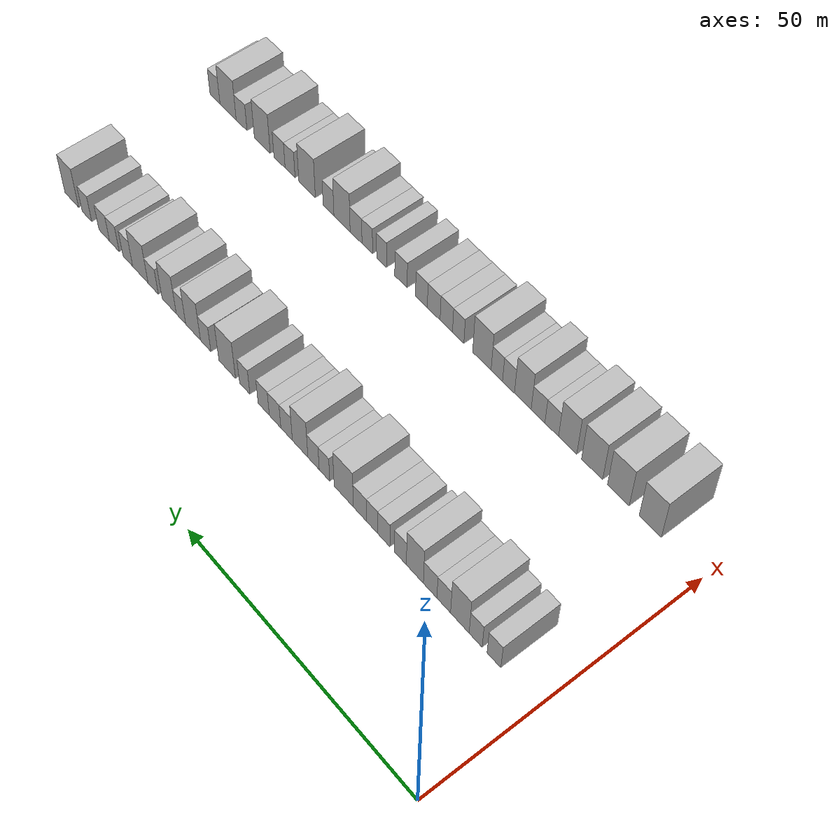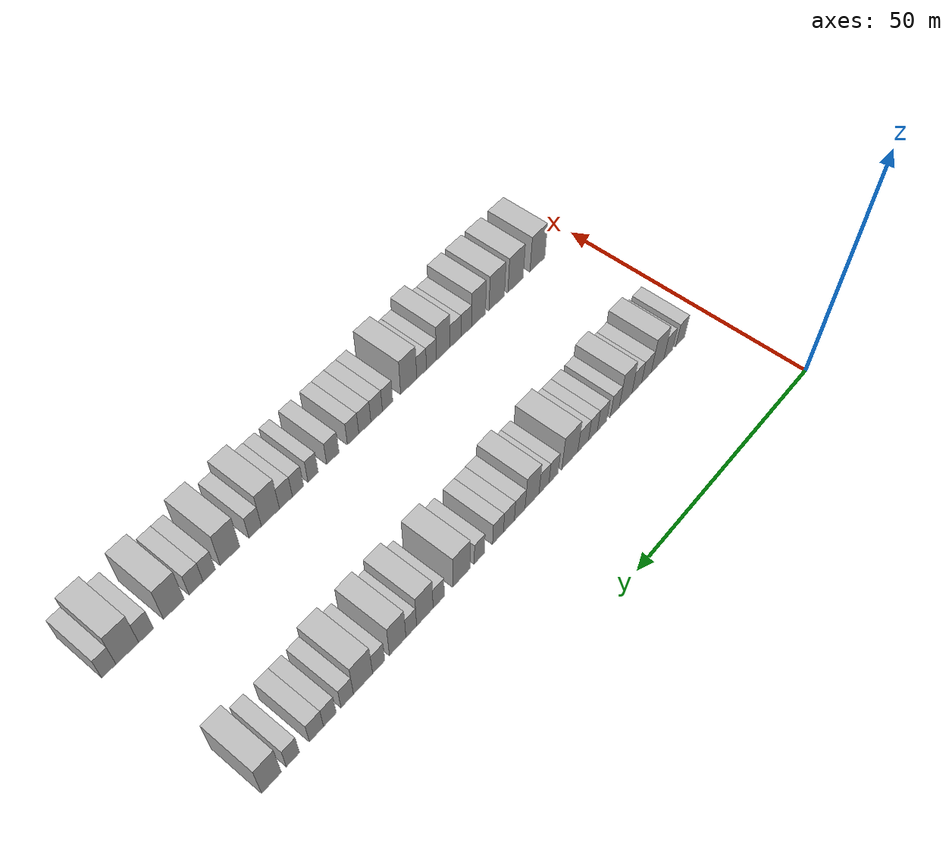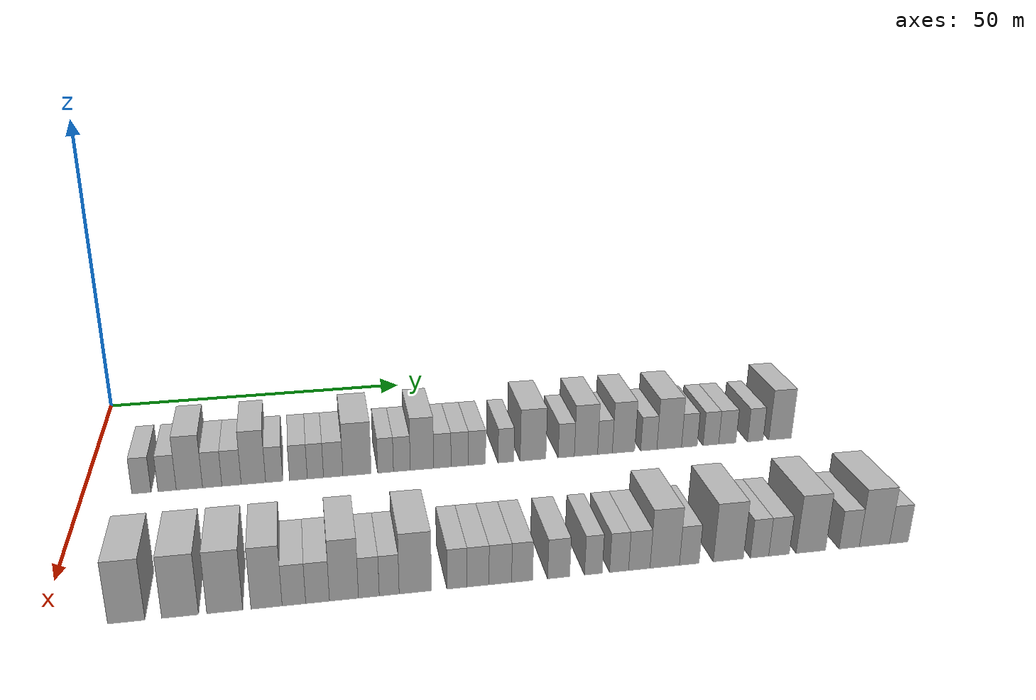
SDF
<sdf version="1.6">
 <world name="default">
  <model name="building_60">
   <static>1</static>
   <pose>25.0000 8.6152 0 0.000000 0.000000 0.000000</pose>
   <link name="link">
    <pose>0 0 3.00 0 0 0</pose>
    <collision name="collision"><geometry><box><size>10.0000 2.7752 6.0000</size></box></geometry></collision>
    <visual name="visual">
     <cast_shadows>0</cast_shadows>
     <geometry><box><size>10.0000 2.7752 6.0000</size></box></geometry>
     <material>
      <script>
       <uri>model://HANNAS_wall/materials/scripts</uri>
       <uri>model://HANNAS_wall/materials/textures</uri>
       <name>vrc/HANNAS_wall</name>
      </script>
     </material>
    </visual>
   </link>
  </model>
  <model name="building_61">
   <static>1</static>
   <pose>25.0000 12.3280 0 0.000000 0.000000 0.000000</pose>
   <link name="link">
    <pose>0 0 3.00 0 0 0</pose>
    <collision name="collision"><geometry><box><size>10.0000 2.6505 6.0000</size></box></geometry></collision>
    <visual name="visual">
     <cast_shadows>0</cast_shadows>
     <geometry><box><size>10.0000 2.6505 6.0000</size></box></geometry>
     <material>
      <script>
       <uri>model://HANNAS_wall/materials/scripts</uri>
       <uri>model://HANNAS_wall/materials/textures</uri>
       <name>vrc/HANNAS_wall</name>
      </script>
     </material>
    </visual>
   </link>
  </model>
  <model name="building_62">
   <static>1</static>
   <pose>25.0000 15.5733 0 0.000000 0.000000 0.000000</pose>
   <link name="link">
    <pose>0 0 4.50 0 0 0</pose>
    <collision name="collision"><geometry><box><size>10.0000 3.8400 9.0000</size></box></geometry></collision>
    <visual name="visual">
     <cast_shadows>0</cast_shadows>
     <geometry><box><size>10.0000 3.8400 9.0000</size></box></geometry>
     <material>
      <script>
       <uri>model://HANNAS_wall/materials/scripts</uri>
       <uri>model://HANNAS_wall/materials/textures</uri>
       <name>vrc/HANNAS_wall</name>
      </script>
     </material>
    </visual>
   </link>
  </model>
  <model name="building_63">
   <static>1</static>
   <pose>25.0000 18.9208 0 0.000000 0.000000 0.000000</pose>
   <link name="link">
    <pose>0 0 3.00 0 0 0</pose>
    <collision name="collision"><geometry><box><size>10.0000 2.8550 6.0000</size></box></geometry></collision>
    <visual name="visual">
     <cast_shadows>0</cast_shadows>
     <geometry><box><size>10.0000 2.8550 6.0000</size></box></geometry>
     <material>
      <script>
       <uri>model://HANNAS_wall/materials/scripts</uri>
       <uri>model://HANNAS_wall/materials/textures</uri>
       <name>vrc/HANNAS_wall</name>
      </script>
     </material>
    </visual>
   </link>
  </model>
  <model name="building_64">
   <static>1</static>
   <pose>25.0000 21.7757 0 0.000000 0.000000 0.000000</pose>
   <link name="link">
    <pose>0 0 3.00 0 0 0</pose>
    <collision name="collision"><geometry><box><size>10.0000 2.8547 6.0000</size></box></geometry></collision>
    <visual name="visual">
     <cast_shadows>0</cast_shadows>
     <geometry><box><size>10.0000 2.8547 6.0000</size></box></geometry>
     <material>
      <script>
       <uri>model://HANNAS_wall/materials/scripts</uri>
       <uri>model://HANNAS_wall/materials/textures</uri>
       <name>vrc/HANNAS_wall</name>
      </script>
     </material>
    </visual>
   </link>
  </model>
  <model name="building_65">
   <static>1</static>
   <pose>25.0000 25.0209 0 0.000000 0.000000 0.000000</pose>
   <link name="link">
    <pose>0 0 4.50 0 0 0</pose>
    <collision name="collision"><geometry><box><size>10.0000 3.6357 9.0000</size></box></geometry></collision>
    <visual name="visual">
     <cast_shadows>0</cast_shadows>
     <geometry><box><size>10.0000 3.6357 9.0000</size></box></geometry>
     <material>
      <script>
       <uri>model://HANNAS_wall/materials/scripts</uri>
       <uri>model://HANNAS_wall/materials/textures</uri>
       <name>vrc/HANNAS_wall</name>
      </script>
     </material>
    </visual>
   </link>
  </model>
  <model name="building_66">
   <static>1</static>
   <pose>25.0000 28.1320 0 0.000000 0.000000 0.000000</pose>
   <link name="link">
    <pose>0 0 3.00 0 0 0</pose>
    <collision name="collision"><geometry><box><size>10.0000 2.5865 6.0000</size></box></geometry></collision>
    <visual name="visual">
     <cast_shadows>0</cast_shadows>
     <geometry><box><size>10.0000 2.5865 6.0000</size></box></geometry>
     <material>
      <script>
       <uri>model://HANNAS_wall/materials/scripts</uri>
       <uri>model://HANNAS_wall/materials/textures</uri>
       <name>vrc/HANNAS_wall</name>
      </script>
     </material>
    </visual>
   </link>
  </model>
  <model name="building_67">
   <static>1</static>
   <pose>25.0000 31.7616 0 0.000000 0.000000 0.000000</pose>
   <link name="link">
    <pose>0 0 3.00 0 0 0</pose>
    <collision name="collision"><geometry><box><size>10.0000 2.6728 6.0000</size></box></geometry></collision>
    <visual name="visual">
     <cast_shadows>0</cast_shadows>
     <geometry><box><size>10.0000 2.6728 6.0000</size></box></geometry>
     <material>
      <script>
       <uri>model://HANNAS_wall/materials/scripts</uri>
       <uri>model://HANNAS_wall/materials/textures</uri>
       <name>vrc/HANNAS_wall</name>
      </script>
     </material>
    </visual>
   </link>
  </model>
  <model name="building_68">
   <static>1</static>
   <pose>25.0000 34.3246 0 0.000000 0.000000 0.000000</pose>
   <link name="link">
    <pose>0 0 3.00 0 0 0</pose>
    <collision name="collision"><geometry><box><size>10.0000 2.4531 6.0000</size></box></geometry></collision>
    <visual name="visual">
     <cast_shadows>0</cast_shadows>
     <geometry><box><size>10.0000 2.4531 6.0000</size></box></geometry>
     <material>
      <script>
       <uri>model://HANNAS_wall/materials/scripts</uri>
       <uri>model://HANNAS_wall/materials/textures</uri>
       <name>vrc/HANNAS_wall</name>
      </script>
     </material>
    </visual>
   </link>
  </model>
  <model name="building_69">
   <static>1</static>
   <pose>25.0000 37.0264 0 0.000000 0.000000 0.000000</pose>
   <link name="link">
    <pose>0 0 3.00 0 0 0</pose>
    <collision name="collision"><geometry><box><size>10.0000 2.9506 6.0000</size></box></geometry></collision>
    <visual name="visual">
     <cast_shadows>0</cast_shadows>
     <geometry><box><size>10.0000 2.9506 6.0000</size></box></geometry>
     <material>
      <script>
       <uri>model://HANNAS_wall/materials/scripts</uri>
       <uri>model://HANNAS_wall/materials/textures</uri>
       <name>vrc/HANNAS_wall</name>
      </script>
     </material>
    </visual>
   </link>
  </model>
  <model name="building_70">
   <static>1</static>
   <pose>25.0000 40.6774 0 0.000000 0.000000 0.000000</pose>
   <link name="link">
    <pose>0 0 4.50 0 0 0</pose>
    <collision name="collision"><geometry><box><size>10.0000 4.3513 9.0000</size></box></geometry></collision>
    <visual name="visual">
     <cast_shadows>0</cast_shadows>
     <geometry><box><size>10.0000 4.3513 9.0000</size></box></geometry>
     <material>
      <script>
       <uri>model://HANNAS_wall/materials/scripts</uri>
       <uri>model://HANNAS_wall/materials/textures</uri>
       <name>vrc/HANNAS_wall</name>
      </script>
     </material>
    </visual>
   </link>
  </model>
  <model name="building_71">
   <static>1</static>
   <pose>25.0000 45.0658 0 0.000000 0.000000 0.000000</pose>
   <link name="link">
    <pose>0 0 3.00 0 0 0</pose>
    <collision name="collision"><geometry><box><size>10.0000 2.4256 6.0000</size></box></geometry></collision>
    <visual name="visual">
     <cast_shadows>0</cast_shadows>
     <geometry><box><size>10.0000 2.4256 6.0000</size></box></geometry>
     <material>
      <script>
       <uri>model://HANNAS_wall/materials/scripts</uri>
       <uri>model://HANNAS_wall/materials/textures</uri>
       <name>vrc/HANNAS_wall</name>
      </script>
     </material>
    </visual>
   </link>
  </model>
  <model name="building_72">
   <static>1</static>
   <pose>25.0000 47.5848 0 0.000000 0.000000 0.000000</pose>
   <link name="link">
    <pose>0 0 3.00 0 0 0</pose>
    <collision name="collision"><geometry><box><size>10.0000 2.6124 6.0000</size></box></geometry></collision>
    <visual name="visual">
     <cast_shadows>0</cast_shadows>
     <geometry><box><size>10.0000 2.6124 6.0000</size></box></geometry>
     <material>
      <script>
       <uri>model://HANNAS_wall/materials/scripts</uri>
       <uri>model://HANNAS_wall/materials/textures</uri>
       <name>vrc/HANNAS_wall</name>
      </script>
     </material>
    </visual>
   </link>
  </model>
  <model name="building_73">
   <static>1</static>
   <pose>25.0000 50.7102 0 0.000000 0.000000 0.000000</pose>
   <link name="link">
    <pose>0 0 4.50 0 0 0</pose>
    <collision name="collision"><geometry><box><size>10.0000 3.6385 9.0000</size></box></geometry></collision>
    <visual name="visual">
     <cast_shadows>0</cast_shadows>
     <geometry><box><size>10.0000 3.6385 9.0000</size></box></geometry>
     <material>
      <script>
       <uri>model://HANNAS_wall/materials/scripts</uri>
       <uri>model://HANNAS_wall/materials/textures</uri>
       <name>vrc/HANNAS_wall</name>
      </script>
     </material>
    </visual>
   </link>
  </model>
  <model name="building_74">
   <static>1</static>
   <pose>25.0000 53.8976 0 0.000000 0.000000 0.000000</pose>
   <link name="link">
    <pose>0 0 3.00 0 0 0</pose>
    <collision name="collision"><geometry><box><size>10.0000 2.7363 6.0000</size></box></geometry></collision>
    <visual name="visual">
     <cast_shadows>0</cast_shadows>
     <geometry><box><size>10.0000 2.7363 6.0000</size></box></geometry>
     <material>
      <script>
       <uri>model://HANNAS_wall/materials/scripts</uri>
       <uri>model://HANNAS_wall/materials/textures</uri>
       <name>vrc/HANNAS_wall</name>
      </script>
     </material>
    </visual>
   </link>
  </model>
  <model name="building_75">
   <static>1</static>
   <pose>25.0000 56.6421 0 0.000000 0.000000 0.000000</pose>
   <link name="link">
    <pose>0 0 3.00 0 0 0</pose>
    <collision name="collision"><geometry><box><size>10.0000 2.7527 6.0000</size></box></geometry></collision>
    <visual name="visual">
     <cast_shadows>0</cast_shadows>
     <geometry><box><size>10.0000 2.7527 6.0000</size></box></geometry>
     <material>
      <script>
       <uri>model://HANNAS_wall/materials/scripts</uri>
       <uri>model://HANNAS_wall/materials/textures</uri>
       <name>vrc/HANNAS_wall</name>
      </script>
     </material>
    </visual>
   </link>
  </model>
  <model name="building_76">
   <static>1</static>
   <pose>25.0000 59.3777 0 0.000000 0.000000 0.000000</pose>
   <link name="link">
    <pose>0 0 3.00 0 0 0</pose>
    <collision name="collision"><geometry><box><size>10.0000 2.7184 6.0000</size></box></geometry></collision>
    <visual name="visual">
     <cast_shadows>0</cast_shadows>
     <geometry><box><size>10.0000 2.7184 6.0000</size></box></geometry>
     <material>
      <script>
       <uri>model://HANNAS_wall/materials/scripts</uri>
       <uri>model://HANNAS_wall/materials/textures</uri>
       <name>vrc/HANNAS_wall</name>
      </script>
     </material>
    </visual>
   </link>
  </model>
  <model name="building_77">
   <static>1</static>
   <pose>25.0000 64.0012 0 0.000000 0.000000 0.000000</pose>
   <link name="link">
    <pose>0 0 3.00 0 0 0</pose>
    <collision name="collision"><geometry><box><size>10.0000 2.5286 6.0000</size></box></geometry></collision>
    <visual name="visual">
     <cast_shadows>0</cast_shadows>
     <geometry><box><size>10.0000 2.5286 6.0000</size></box></geometry>
     <material>
      <script>
       <uri>model://HANNAS_wall/materials/scripts</uri>
       <uri>model://HANNAS_wall/materials/textures</uri>
       <name>vrc/HANNAS_wall</name>
      </script>
     </material>
    </visual>
   </link>
  </model>
  <model name="building_78">
   <static>1</static>
   <pose>25.0000 68.3409 0 0.000000 0.000000 0.000000</pose>
   <link name="link">
    <pose>0 0 4.50 0 0 0</pose>
    <collision name="collision"><geometry><box><size>10.0000 4.1508 9.0000</size></box></geometry></collision>
    <visual name="visual">
     <cast_shadows>0</cast_shadows>
     <geometry><box><size>10.0000 4.1508 9.0000</size></box></geometry>
     <material>
      <script>
       <uri>model://HANNAS_wall/materials/scripts</uri>
       <uri>model://HANNAS_wall/materials/textures</uri>
       <name>vrc/HANNAS_wall</name>
      </script>
     </material>
    </visual>
   </link>
  </model>
  <model name="building_79">
   <static>1</static>
   <pose>25.0000 73.7358 0 0.000000 0.000000 0.000000</pose>
   <link name="link">
    <pose>0 0 3.00 0 0 0</pose>
    <collision name="collision"><geometry><box><size>10.0000 2.6390 6.0000</size></box></geometry></collision>
    <visual name="visual">
     <cast_shadows>0</cast_shadows>
     <geometry><box><size>10.0000 2.6390 6.0000</size></box></geometry>
     <material>
      <script>
       <uri>model://HANNAS_wall/materials/scripts</uri>
       <uri>model://HANNAS_wall/materials/textures</uri>
       <name>vrc/HANNAS_wall</name>
      </script>
     </material>
    </visual>
   </link>
  </model>
  <model name="building_80">
   <static>1</static>
   <pose>25.0000 76.9606 0 0.000000 0.000000 0.000000</pose>
   <link name="link">
    <pose>0 0 4.50 0 0 0</pose>
    <collision name="collision"><geometry><box><size>10.0000 3.8106 9.0000</size></box></geometry></collision>
    <visual name="visual">
     <cast_shadows>0</cast_shadows>
     <geometry><box><size>10.0000 3.8106 9.0000</size></box></geometry>
     <material>
      <script>
       <uri>model://HANNAS_wall/materials/scripts</uri>
       <uri>model://HANNAS_wall/materials/textures</uri>
       <name>vrc/HANNAS_wall</name>
      </script>
     </material>
    </visual>
   </link>
  </model>
  <model name="building_81">
   <static>1</static>
   <pose>25.0000 80.0798 0 0.000000 0.000000 0.000000</pose>
   <link name="link">
    <pose>0 0 3.00 0 0 0</pose>
    <collision name="collision"><geometry><box><size>10.0000 2.4279 6.0000</size></box></geometry></collision>
    <visual name="visual">
     <cast_shadows>0</cast_shadows>
     <geometry><box><size>10.0000 2.4279 6.0000</size></box></geometry>
     <material>
      <script>
       <uri>model://HANNAS_wall/materials/scripts</uri>
       <uri>model://HANNAS_wall/materials/textures</uri>
       <name>vrc/HANNAS_wall</name>
      </script>
     </material>
    </visual>
   </link>
  </model>
  <model name="building_82">
   <static>1</static>
   <pose>25.0000 83.1506 0 0.000000 0.000000 0.000000</pose>
   <link name="link">
    <pose>0 0 4.50 0 0 0</pose>
    <collision name="collision"><geometry><box><size>10.0000 3.7137 9.0000</size></box></geometry></collision>
    <visual name="visual">
     <cast_shadows>0</cast_shadows>
     <geometry><box><size>10.0000 3.7137 9.0000</size></box></geometry>
     <material>
      <script>
       <uri>model://HANNAS_wall/materials/scripts</uri>
       <uri>model://HANNAS_wall/materials/textures</uri>
       <name>vrc/HANNAS_wall</name>
      </script>
     </material>
    </visual>
   </link>
  </model>
  <model name="building_83">
   <static>1</static>
   <pose>25.0000 87.3602 0 0.000000 0.000000 0.000000</pose>
   <link name="link">
    <pose>0 0 3.00 0 0 0</pose>
    <collision name="collision"><geometry><box><size>10.0000 2.7054 6.0000</size></box></geometry></collision>
    <visual name="visual">
     <cast_shadows>0</cast_shadows>
     <geometry><box><size>10.0000 2.7054 6.0000</size></box></geometry>
     <material>
      <script>
       <uri>model://HANNAS_wall/materials/scripts</uri>
       <uri>model://HANNAS_wall/materials/textures</uri>
       <name>vrc/HANNAS_wall</name>
      </script>
     </material>
    </visual>
   </link>
  </model>
  <model name="building_84">
   <static>1</static>
   <pose>25.0000 90.7812 0 0.000000 0.000000 0.000000</pose>
   <link name="link">
    <pose>0 0 4.50 0 0 0</pose>
    <collision name="collision"><geometry><box><size>10.0000 4.1368 9.0000</size></box></geometry></collision>
    <visual name="visual">
     <cast_shadows>0</cast_shadows>
     <geometry><box><size>10.0000 4.1368 9.0000</size></box></geometry>
     <material>
      <script>
       <uri>model://HANNAS_wall/materials/scripts</uri>
       <uri>model://HANNAS_wall/materials/textures</uri>
       <name>vrc/HANNAS_wall</name>
      </script>
     </material>
    </visual>
   </link>
  </model>
  <model name="building_85">
   <static>1</static>
   <pose>25.0000 94.1807 0 0.000000 0.000000 0.000000</pose>
   <link name="link">
    <pose>0 0 3.00 0 0 0</pose>
    <collision name="collision"><geometry><box><size>10.0000 2.6621 6.0000</size></box></geometry></collision>
    <visual name="visual">
     <cast_shadows>0</cast_shadows>
     <geometry><box><size>10.0000 2.6621 6.0000</size></box></geometry>
     <material>
      <script>
       <uri>model://HANNAS_wall/materials/scripts</uri>
       <uri>model://HANNAS_wall/materials/textures</uri>
       <name>vrc/HANNAS_wall</name>
      </script>
     </material>
    </visual>
   </link>
  </model>
  <model name="building_86">
   <static>1</static>
   <pose>25.0000 97.8368 0 0.000000 0.000000 0.000000</pose>
   <link name="link">
    <pose>0 0 3.00 0 0 0</pose>
    <collision name="collision"><geometry><box><size>10.0000 2.6501 6.0000</size></box></geometry></collision>
    <visual name="visual">
     <cast_shadows>0</cast_shadows>
     <geometry><box><size>10.0000 2.6501 6.0000</size></box></geometry>
     <material>
      <script>
       <uri>model://HANNAS_wall/materials/scripts</uri>
       <uri>model://HANNAS_wall/materials/textures</uri>
       <name>vrc/HANNAS_wall</name>
      </script>
     </material>
    </visual>
   </link>
  </model>
  <model name="building_87">
   <static>1</static>
   <pose>25.0000 100.6346 0 0.000000 0.000000 0.000000</pose>
   <link name="link">
    <pose>0 0 3.00 0 0 0</pose>
    <collision name="collision"><geometry><box><size>10.0000 2.9455 6.0000</size></box></geometry></collision>
    <visual name="visual">
     <cast_shadows>0</cast_shadows>
     <geometry><box><size>10.0000 2.9455 6.0000</size></box></geometry>
     <material>
      <script>
       <uri>model://HANNAS_wall/materials/scripts</uri>
       <uri>model://HANNAS_wall/materials/textures</uri>
       <name>vrc/HANNAS_wall</name>
      </script>
     </material>
    </visual>
   </link>
  </model>
  <model name="building_88">
   <static>1</static>
   <pose>25.0000 105.4472 0 0.000000 0.000000 0.000000</pose>
   <link name="link">
    <pose>0 0 3.00 0 0 0</pose>
    <collision name="collision"><geometry><box><size>10.0000 2.6798 6.0000</size></box></geometry></collision>
    <visual name="visual">
     <cast_shadows>0</cast_shadows>
     <geometry><box><size>10.0000 2.6798 6.0000</size></box></geometry>
     <material>
      <script>
       <uri>model://HANNAS_wall/materials/scripts</uri>
       <uri>model://HANNAS_wall/materials/textures</uri>
       <name>vrc/HANNAS_wall</name>
      </script>
     </material>
    </visual>
   </link>
  </model>
  <model name="building_89">
   <static>1</static>
   <pose>25.0000 109.7364 0 0.000000 0.000000 0.000000</pose>
   <link name="link">
    <pose>0 0 4.50 0 0 0</pose>
    <collision name="collision"><geometry><box><size>10.0000 3.8987 9.0000</size></box></geometry></collision>
    <visual name="visual">
     <cast_shadows>0</cast_shadows>
     <geometry><box><size>10.0000 3.8987 9.0000</size></box></geometry>
     <material>
      <script>
       <uri>model://HANNAS_wall/materials/scripts</uri>
       <uri>model://HANNAS_wall/materials/textures</uri>
       <name>vrc/HANNAS_wall</name>
      </script>
     </material>
    </visual>
   </link>
  </model>
  <model name="building_173">
   <static>1</static>
   <pose>55.0000 10.3461 0 0.000000 0.000000 0.000000</pose>
   <link name="link">
    <pose>0 0 4.50 0 0 0</pose>
    <collision name="collision"><geometry><box><size>10.0000 4.4324 9.0000</size></box></geometry></collision>
    <visual name="visual">
     <cast_shadows>0</cast_shadows>
     <geometry><box><size>10.0000 4.4324 9.0000</size></box></geometry>
     <material>
      <script>
       <uri>model://HANNAS_wall/materials/scripts</uri>
       <uri>model://HANNAS_wall/materials/textures</uri>
       <name>vrc/HANNAS_wall</name>
      </script>
     </material>
    </visual>
   </link>
  </model>
  <model name="building_174">
   <static>1</static>
   <pose>55.0000 16.7823 0 0.000000 0.000000 0.000000</pose>
   <link name="link">
    <pose>0 0 4.50 0 0 0</pose>
    <collision name="collision"><geometry><box><size>10.0000 4.4399 9.0000</size></box></geometry></collision>
    <visual name="visual">
     <cast_shadows>0</cast_shadows>
     <geometry><box><size>10.0000 4.4399 9.0000</size></box></geometry>
     <material>
      <script>
       <uri>model://HANNAS_wall/materials/scripts</uri>
       <uri>model://HANNAS_wall/materials/textures</uri>
       <name>vrc/HANNAS_wall</name>
      </script>
     </material>
    </visual>
   </link>
  </model>
  <model name="building_175">
   <static>1</static>
   <pose>55.0000 22.1979 0 0.000000 0.000000 0.000000</pose>
   <link name="link">
    <pose>0 0 4.50 0 0 0</pose>
    <collision name="collision"><geometry><box><size>10.0000 4.3912 9.0000</size></box></geometry></collision>
    <visual name="visual">
     <cast_shadows>0</cast_shadows>
     <geometry><box><size>10.0000 4.3912 9.0000</size></box></geometry>
     <material>
      <script>
       <uri>model://HANNAS_wall/materials/scripts</uri>
       <uri>model://HANNAS_wall/materials/textures</uri>
       <name>vrc/HANNAS_wall</name>
      </script>
     </material>
    </visual>
   </link>
  </model>
  <model name="building_176">
   <static>1</static>
   <pose>55.0000 27.3187 0 0.000000 0.000000 0.000000</pose>
   <link name="link">
    <pose>0 0 4.50 0 0 0</pose>
    <collision name="collision"><geometry><box><size>10.0000 3.8504 9.0000</size></box></geometry></collision>
    <visual name="visual">
     <cast_shadows>0</cast_shadows>
     <geometry><box><size>10.0000 3.8504 9.0000</size></box></geometry>
     <material>
      <script>
       <uri>model://HANNAS_wall/materials/scripts</uri>
       <uri>model://HANNAS_wall/materials/textures</uri>
       <name>vrc/HANNAS_wall</name>
      </script>
     </material>
    </visual>
   </link>
  </model>
  <model name="building_177">
   <static>1</static>
   <pose>55.0000 30.7087 0 0.000000 0.000000 0.000000</pose>
   <link name="link">
    <pose>0 0 3.00 0 0 0</pose>
    <collision name="collision"><geometry><box><size>10.0000 2.9296 6.0000</size></box></geometry></collision>
    <visual name="visual">
     <cast_shadows>0</cast_shadows>
     <geometry><box><size>10.0000 2.9296 6.0000</size></box></geometry>
     <material>
      <script>
       <uri>model://HANNAS_wall/materials/scripts</uri>
       <uri>model://HANNAS_wall/materials/textures</uri>
       <name>vrc/HANNAS_wall</name>
      </script>
     </material>
    </visual>
   </link>
  </model>
  <model name="building_178">
   <static>1</static>
   <pose>55.0000 33.6608 0 0.000000 0.000000 0.000000</pose>
   <link name="link">
    <pose>0 0 3.00 0 0 0</pose>
    <collision name="collision"><geometry><box><size>10.0000 2.9746 6.0000</size></box></geometry></collision>
    <visual name="visual">
     <cast_shadows>0</cast_shadows>
     <geometry><box><size>10.0000 2.9746 6.0000</size></box></geometry>
     <material>
      <script>
       <uri>model://HANNAS_wall/materials/scripts</uri>
       <uri>model://HANNAS_wall/materials/textures</uri>
       <name>vrc/HANNAS_wall</name>
      </script>
     </material>
    </visual>
   </link>
  </model>
  <model name="building_179">
   <static>1</static>
   <pose>55.0000 36.9774 0 0.000000 0.000000 0.000000</pose>
   <link name="link">
    <pose>0 0 4.50 0 0 0</pose>
    <collision name="collision"><geometry><box><size>10.0000 3.6586 9.0000</size></box></geometry></collision>
    <visual name="visual">
     <cast_shadows>0</cast_shadows>
     <geometry><box><size>10.0000 3.6586 9.0000</size></box></geometry>
     <material>
      <script>
       <uri>model://HANNAS_wall/materials/scripts</uri>
       <uri>model://HANNAS_wall/materials/textures</uri>
       <name>vrc/HANNAS_wall</name>
      </script>
     </material>
    </visual>
   </link>
  </model>
  <model name="building_180">
   <static>1</static>
   <pose>55.0000 40.1255 0 0.000000 0.000000 0.000000</pose>
   <link name="link">
    <pose>0 0 3.00 0 0 0</pose>
    <collision name="collision"><geometry><box><size>10.0000 2.6378 6.0000</size></box></geometry></collision>
    <visual name="visual">
     <cast_shadows>0</cast_shadows>
     <geometry><box><size>10.0000 2.6378 6.0000</size></box></geometry>
     <material>
      <script>
       <uri>model://HANNAS_wall/materials/scripts</uri>
       <uri>model://HANNAS_wall/materials/textures</uri>
       <name>vrc/HANNAS_wall</name>
      </script>
     </material>
    </visual>
   </link>
  </model>
  <model name="building_181">
   <static>1</static>
   <pose>55.0000 42.7164 0 0.000000 0.000000 0.000000</pose>
   <link name="link">
    <pose>0 0 3.00 0 0 0</pose>
    <collision name="collision"><geometry><box><size>10.0000 2.5439 6.0000</size></box></geometry></collision>
    <visual name="visual">
     <cast_shadows>0</cast_shadows>
     <geometry><box><size>10.0000 2.5439 6.0000</size></box></geometry>
     <material>
      <script>
       <uri>model://HANNAS_wall/materials/scripts</uri>
       <uri>model://HANNAS_wall/materials/textures</uri>
       <name>vrc/HANNAS_wall</name>
      </script>
     </material>
    </visual>
   </link>
  </model>
  <model name="building_182">
   <static>1</static>
   <pose>55.0000 46.0701 0 0.000000 0.000000 0.000000</pose>
   <link name="link">
    <pose>0 0 4.50 0 0 0</pose>
    <collision name="collision"><geometry><box><size>10.0000 4.1636 9.0000</size></box></geometry></collision>
    <visual name="visual">
     <cast_shadows>0</cast_shadows>
     <geometry><box><size>10.0000 4.1636 9.0000</size></box></geometry>
     <material>
      <script>
       <uri>model://HANNAS_wall/materials/scripts</uri>
       <uri>model://HANNAS_wall/materials/textures</uri>
       <name>vrc/HANNAS_wall</name>
      </script>
     </material>
    </visual>
   </link>
  </model>
  <model name="building_183">
   <static>1</static>
   <pose>55.0000 51.4609 0 0.000000 0.000000 0.000000</pose>
   <link name="link">
    <pose>0 0 3.00 0 0 0</pose>
    <collision name="collision"><geometry><box><size>10.0000 2.6180 6.0000</size></box></geometry></collision>
    <visual name="visual">
     <cast_shadows>0</cast_shadows>
     <geometry><box><size>10.0000 2.6180 6.0000</size></box></geometry>
     <material>
      <script>
       <uri>model://HANNAS_wall/materials/scripts</uri>
       <uri>model://HANNAS_wall/materials/textures</uri>
       <name>vrc/HANNAS_wall</name>
      </script>
     </material>
    </visual>
   </link>
  </model>
  <model name="building_184">
   <static>1</static>
   <pose>55.0000 54.2060 0 0.000000 0.000000 0.000000</pose>
   <link name="link">
    <pose>0 0 3.00 0 0 0</pose>
    <collision name="collision"><geometry><box><size>10.0000 2.8722 6.0000</size></box></geometry></collision>
    <visual name="visual">
     <cast_shadows>0</cast_shadows>
     <geometry><box><size>10.0000 2.8722 6.0000</size></box></geometry>
     <material>
      <script>
       <uri>model://HANNAS_wall/materials/scripts</uri>
       <uri>model://HANNAS_wall/materials/textures</uri>
       <name>vrc/HANNAS_wall</name>
      </script>
     </material>
    </visual>
   </link>
  </model>
  <model name="building_185">
   <static>1</static>
   <pose>55.0000 57.1376 0 0.000000 0.000000 0.000000</pose>
   <link name="link">
    <pose>0 0 3.00 0 0 0</pose>
    <collision name="collision"><geometry><box><size>10.0000 2.9911 6.0000</size></box></geometry></collision>
    <visual name="visual">
     <cast_shadows>0</cast_shadows>
     <geometry><box><size>10.0000 2.9911 6.0000</size></box></geometry>
     <material>
      <script>
       <uri>model://HANNAS_wall/materials/scripts</uri>
       <uri>model://HANNAS_wall/materials/textures</uri>
       <name>vrc/HANNAS_wall</name>
      </script>
     </material>
    </visual>
   </link>
  </model>
  <model name="building_186">
   <static>1</static>
   <pose>55.0000 60.0305 0 0.000000 0.000000 0.000000</pose>
   <link name="link">
    <pose>0 0 3.00 0 0 0</pose>
    <collision name="collision"><geometry><box><size>10.0000 2.7946 6.0000</size></box></geometry></collision>
    <visual name="visual">
     <cast_shadows>0</cast_shadows>
     <geometry><box><size>10.0000 2.7946 6.0000</size></box></geometry>
     <material>
      <script>
       <uri>model://HANNAS_wall/materials/scripts</uri>
       <uri>model://HANNAS_wall/materials/textures</uri>
       <name>vrc/HANNAS_wall</name>
      </script>
     </material>
    </visual>
   </link>
  </model>
  <model name="building_187">
   <static>1</static>
   <pose>55.0000 64.9131 0 0.000000 0.000000 0.000000</pose>
   <link name="link">
    <pose>0 0 3.00 0 0 0</pose>
    <collision name="collision"><geometry><box><size>10.0000 2.9706 6.0000</size></box></geometry></collision>
    <visual name="visual">
     <cast_shadows>0</cast_shadows>
     <geometry><box><size>10.0000 2.9706 6.0000</size></box></geometry>
     <material>
      <script>
       <uri>model://HANNAS_wall/materials/scripts</uri>
       <uri>model://HANNAS_wall/materials/textures</uri>
       <name>vrc/HANNAS_wall</name>
      </script>
     </material>
    </visual>
   </link>
  </model>
  <model name="building_188">
   <static>1</static>
   <pose>55.0000 69.6005 0 0.000000 0.000000 0.000000</pose>
   <link name="link">
    <pose>0 0 3.00 0 0 0</pose>
    <collision name="collision"><geometry><box><size>10.0000 2.4041 6.0000</size></box></geometry></collision>
    <visual name="visual">
     <cast_shadows>0</cast_shadows>
     <geometry><box><size>10.0000 2.4041 6.0000</size></box></geometry>
     <material>
      <script>
       <uri>model://HANNAS_wall/materials/scripts</uri>
       <uri>model://HANNAS_wall/materials/textures</uri>
       <name>vrc/HANNAS_wall</name>
      </script>
     </material>
    </visual>
   </link>
  </model>
  <model name="building_189">
   <static>1</static>
   <pose>55.0000 73.1031 0 0.000000 0.000000 0.000000</pose>
   <link name="link">
    <pose>0 0 3.00 0 0 0</pose>
    <collision name="collision"><geometry><box><size>10.0000 2.6012 6.0000</size></box></geometry></collision>
    <visual name="visual">
     <cast_shadows>0</cast_shadows>
     <geometry><box><size>10.0000 2.6012 6.0000</size></box></geometry>
     <material>
      <script>
       <uri>model://HANNAS_wall/materials/scripts</uri>
       <uri>model://HANNAS_wall/materials/textures</uri>
       <name>vrc/HANNAS_wall</name>
      </script>
     </material>
    </visual>
   </link>
  </model>
  <model name="building_190">
   <static>1</static>
   <pose>55.0000 75.8815 0 0.000000 0.000000 0.000000</pose>
   <link name="link">
    <pose>0 0 3.00 0 0 0</pose>
    <collision name="collision"><geometry><box><size>10.0000 2.9556 6.0000</size></box></geometry></collision>
    <visual name="visual">
     <cast_shadows>0</cast_shadows>
     <geometry><box><size>10.0000 2.9556 6.0000</size></box></geometry>
     <material>
      <script>
       <uri>model://HANNAS_wall/materials/scripts</uri>
       <uri>model://HANNAS_wall/materials/textures</uri>
       <name>vrc/HANNAS_wall</name>
      </script>
     </material>
    </visual>
   </link>
  </model>
  <model name="building_191">
   <static>1</static>
   <pose>55.0000 79.3960 0 0.000000 0.000000 0.000000</pose>
   <link name="link">
    <pose>0 0 4.50 0 0 0</pose>
    <collision name="collision"><geometry><box><size>10.0000 4.0735 9.0000</size></box></geometry></collision>
    <visual name="visual">
     <cast_shadows>0</cast_shadows>
     <geometry><box><size>10.0000 4.0735 9.0000</size></box></geometry>
     <material>
      <script>
       <uri>model://HANNAS_wall/materials/scripts</uri>
       <uri>model://HANNAS_wall/materials/textures</uri>
       <name>vrc/HANNAS_wall</name>
      </script>
     </material>
    </visual>
   </link>
  </model>
  <model name="building_192">
   <static>1</static>
   <pose>55.0000 82.8061 0 0.000000 0.000000 0.000000</pose>
   <link name="link">
    <pose>0 0 3.00 0 0 0</pose>
    <collision name="collision"><geometry><box><size>10.0000 2.7467 6.0000</size></box></geometry></collision>
    <visual name="visual">
     <cast_shadows>0</cast_shadows>
     <geometry><box><size>10.0000 2.7467 6.0000</size></box></geometry>
     <material>
      <script>
       <uri>model://HANNAS_wall/materials/scripts</uri>
       <uri>model://HANNAS_wall/materials/textures</uri>
       <name>vrc/HANNAS_wall</name>
      </script>
     </material>
    </visual>
   </link>
  </model>
  <model name="building_193">
   <static>1</static>
   <pose>55.0000 88.3074 0 0.000000 0.000000 0.000000</pose>
   <link name="link">
    <pose>0 0 4.50 0 0 0</pose>
    <collision name="collision"><geometry><box><size>10.0000 4.2560 9.0000</size></box></geometry></collision>
    <visual name="visual">
     <cast_shadows>0</cast_shadows>
     <geometry><box><size>10.0000 4.2560 9.0000</size></box></geometry>
     <material>
      <script>
       <uri>model://HANNAS_wall/materials/scripts</uri>
       <uri>model://HANNAS_wall/materials/textures</uri>
       <name>vrc/HANNAS_wall</name>
      </script>
     </material>
    </visual>
   </link>
  </model>
  <model name="building_194">
   <static>1</static>
   <pose>55.0000 92.7417 0 0.000000 0.000000 0.000000</pose>
   <link name="link">
    <pose>0 0 3.00 0 0 0</pose>
    <collision name="collision"><geometry><box><size>10.0000 2.6125 6.0000</size></box></geometry></collision>
    <visual name="visual">
     <cast_shadows>0</cast_shadows>
     <geometry><box><size>10.0000 2.6125 6.0000</size></box></geometry>
     <material>
      <script>
       <uri>model://HANNAS_wall/materials/scripts</uri>
       <uri>model://HANNAS_wall/materials/textures</uri>
       <name>vrc/HANNAS_wall</name>
      </script>
     </material>
    </visual>
   </link>
  </model>
  <model name="building_195">
   <static>1</static>
   <pose>55.0000 95.5198 0 0.000000 0.000000 0.000000</pose>
   <link name="link">
    <pose>0 0 3.00 0 0 0</pose>
    <collision name="collision"><geometry><box><size>10.0000 2.9437 6.0000</size></box></geometry></collision>
    <visual name="visual">
     <cast_shadows>0</cast_shadows>
     <geometry><box><size>10.0000 2.9437 6.0000</size></box></geometry>
     <material>
      <script>
       <uri>model://HANNAS_wall/materials/scripts</uri>
       <uri>model://HANNAS_wall/materials/textures</uri>
       <name>vrc/HANNAS_wall</name>
      </script>
     </material>
    </visual>
   </link>
  </model>
  <model name="building_196">
   <static>1</static>
   <pose>55.0000 100.1172 0 0.000000 0.000000 0.000000</pose>
   <link name="link">
    <pose>0 0 4.50 0 0 0</pose>
    <collision name="collision"><geometry><box><size>10.0000 4.2510 9.0000</size></box></geometry></collision>
    <visual name="visual">
     <cast_shadows>0</cast_shadows>
     <geometry><box><size>10.0000 4.2510 9.0000</size></box></geometry>
     <material>
      <script>
       <uri>model://HANNAS_wall/materials/scripts</uri>
       <uri>model://HANNAS_wall/materials/textures</uri>
       <name>vrc/HANNAS_wall</name>
      </script>
     </material>
    </visual>
   </link>
  </model>
  <model name="building_197">
   <static>1</static>
   <pose>55.0000 105.7228 0 0.000000 0.000000 0.000000</pose>
   <link name="link">
    <pose>0 0 3.00 0 0 0</pose>
    <collision name="collision"><geometry><box><size>10.0000 2.9602 6.0000</size></box></geometry></collision>
    <visual name="visual">
     <cast_shadows>0</cast_shadows>
     <geometry><box><size>10.0000 2.9602 6.0000</size></box></geometry>
     <material>
      <script>
       <uri>model://HANNAS_wall/materials/scripts</uri>
       <uri>model://HANNAS_wall/materials/textures</uri>
       <name>vrc/HANNAS_wall</name>
      </script>
     </material>
    </visual>
   </link>
  </model>
  <model name="building_198">
   <static>1</static>
   <pose>55.0000 109.4371 0 0.000000 0.000000 0.000000</pose>
   <link name="link">
    <pose>0 0 4.50 0 0 0</pose>
    <collision name="collision"><geometry><box><size>10.0000 4.4683 9.0000</size></box></geometry></collision>
    <visual name="visual">
     <cast_shadows>0</cast_shadows>
     <geometry><box><size>10.0000 4.4683 9.0000</size></box></geometry>
     <material>
      <script>
       <uri>model://HANNAS_wall/materials/scripts</uri>
       <uri>model://HANNAS_wall/materials/textures</uri>
       <name>vrc/HANNAS_wall</name>
      </script>
     </material>
    </visual>
   </link>
  </model>
  <model name="building_199">
   <static>1</static>
   <pose>55.0000 113.0524 0 0.000000 0.000000 0.000000</pose>
   <link name="link">
    <pose>0 0 3.00 0 0 0</pose>
    <collision name="collision"><geometry><box><size>10.0000 2.7622 6.0000</size></box></geometry></collision>
    <visual name="visual">
     <cast_shadows>0</cast_shadows>
     <geometry><box><size>10.0000 2.7622 6.0000</size></box></geometry>
     <material>
      <script>
       <uri>model://HANNAS_wall/materials/scripts</uri>
       <uri>model://HANNAS_wall/materials/textures</uri>
       <name>vrc/HANNAS_wall</name>
      </script>
     </material>
    </visual>
   </link>
  </model>
 </world>
</sdf>
